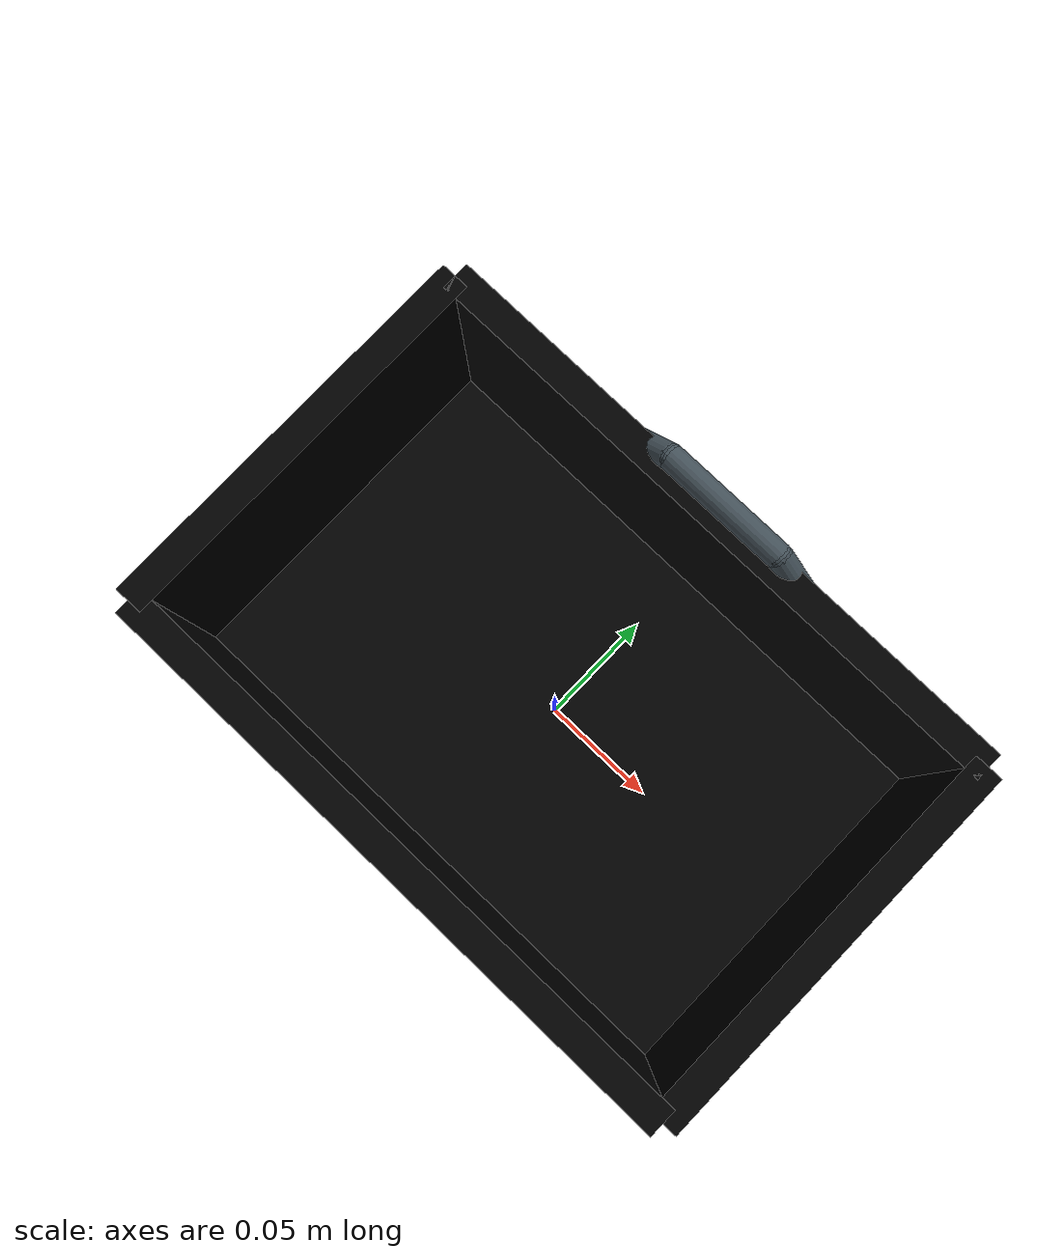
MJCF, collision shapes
<mujoco model="instrument_box">
  <asset>
    <texture name="instrument_basket_texture"
             file="../../stable_scanned_objects/basket/texture.png" type="2d"/>
    <material name="instrument_basket_material"
              texture="instrument_basket_texture"
              texrepeat="1 1" reflectance="0.35"
              rgba="0.55 0.62 0.66 1"/>
    <mesh name="instrument_basket_mesh"
          file="../../stable_scanned_objects/basket/visual/basket_vis.msh"
          scale="1.65 1.08 0.82"/>
  </asset>
  <worldbody>
    <body>
      <body name="object">
        <site name="contain_region" type="box" pos="0 0 0.050"
              quat="1 0 0 0" size="0.110 0.065 0.045" rgba="0 0 0 0"/>
        <geom name="basket_visual" type="mesh" mesh="instrument_basket_mesh"
              material="instrument_basket_material"
              contype="0" conaffinity="0" group="1"/>
        <geom name="basket_bottom" type="box" pos="0 0 0.006"
              size="0.128 0.082 0.006" rgba="0 0 0 0"
              density="5000" friction="1.5 0.02 0.001"
              solimp="0.99 0.99 0.001" solref="0.005 1" group="0"/>
        <geom name="basket_left_wall" type="box" pos="-0.128 0 0.046"
              size="0.006 0.082 0.046" rgba="0 0 0 0"
              density="5000" friction="1.5 0.02 0.001"
              solimp="0.99 0.99 0.001" solref="0.005 1" group="0"/>
        <geom name="basket_right_wall" type="box" pos="0.128 0 0.046"
              size="0.006 0.082 0.046" rgba="0 0 0 0"
              density="5000" friction="1.5 0.02 0.001"
              solimp="0.99 0.99 0.001" solref="0.005 1" group="0"/>
        <geom name="basket_front_wall" type="box" pos="0 -0.082 0.046"
              size="0.128 0.006 0.046" rgba="0 0 0 0"
              density="5000" friction="1.5 0.02 0.001"
              solimp="0.99 0.99 0.001" solref="0.005 1" group="0"/>
        <geom name="basket_back_wall" type="box" pos="0 0.082 0.046"
              size="0.128 0.006 0.046" rgba="0 0 0 0"
              density="5000" friction="1.5 0.02 0.001"
              solimp="0.99 0.99 0.001" solref="0.005 1" group="0"/>
        <geom name="handle_left" type="capsule"
              fromto="-0.052 0.086 0.072 -0.026 0.086 0.094"
              size="0.005" rgba="0.25 0.30 0.33 1"
              contype="0" conaffinity="0" group="1"/>
        <geom name="handle_right" type="capsule"
              fromto="0.052 0.086 0.072 0.026 0.086 0.094"
              size="0.005" rgba="0.25 0.30 0.33 1"
              contype="0" conaffinity="0" group="1"/>
        <geom name="handle_top" type="capsule"
              fromto="-0.026 0.086 0.094 0.026 0.086 0.094"
              size="0.005" rgba="0.25 0.30 0.33 1"
              contype="0" conaffinity="0" group="1"/>
      </body>
      <site name="bottom_site" pos="0 0 -0.040" size="0.003" rgba="0 0 0 0"/>
      <site name="top_site" pos="0 0 0.122" size="0.003" rgba="0 0 0 0"/>
      <site name="horizontal_radius_site" pos="0.138 0.092 0.060"
            size="0.003" rgba="0 0 0 0"/>
    </body>
  </worldbody>
</mujoco>
